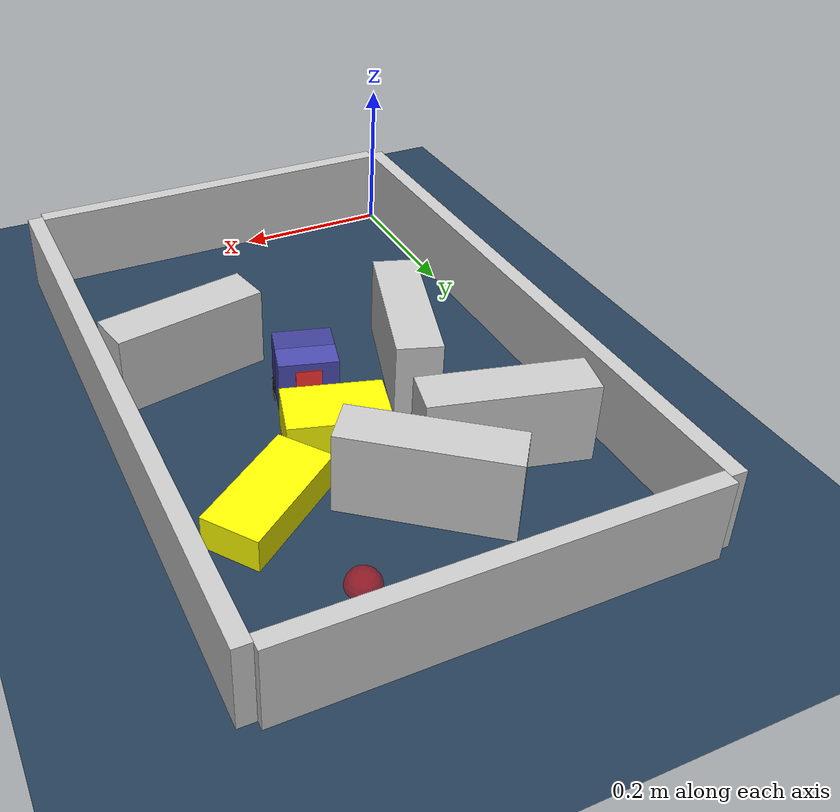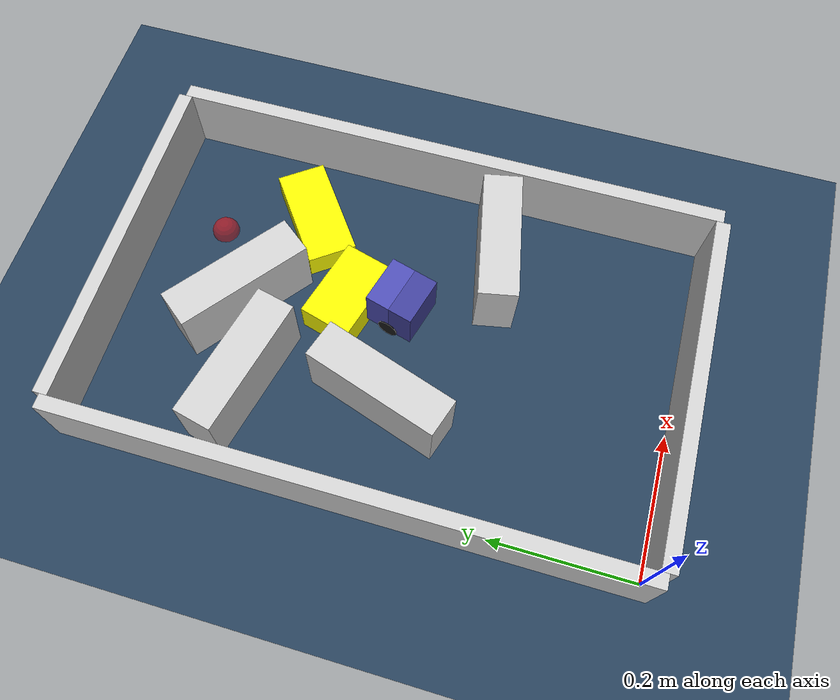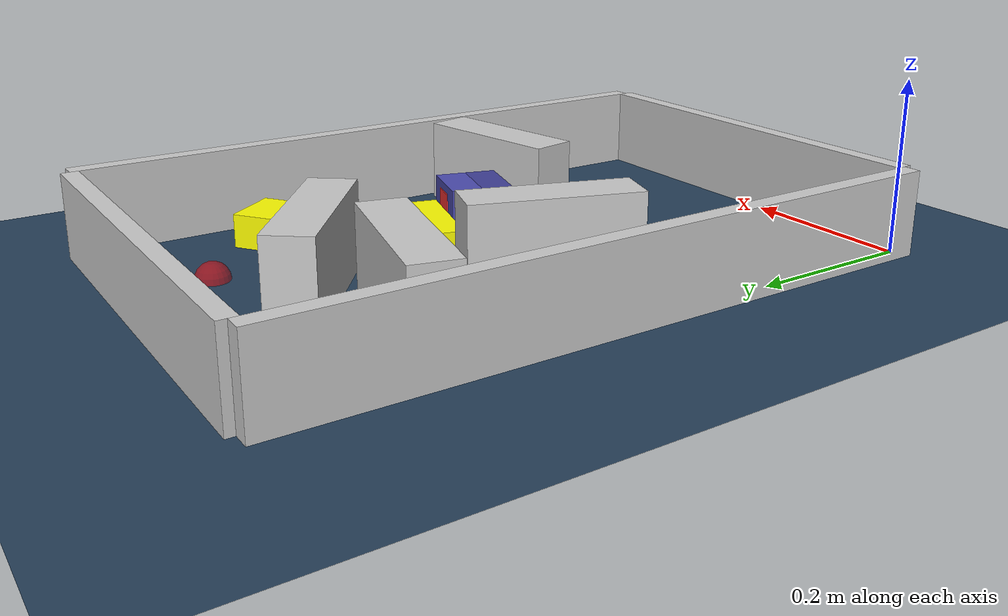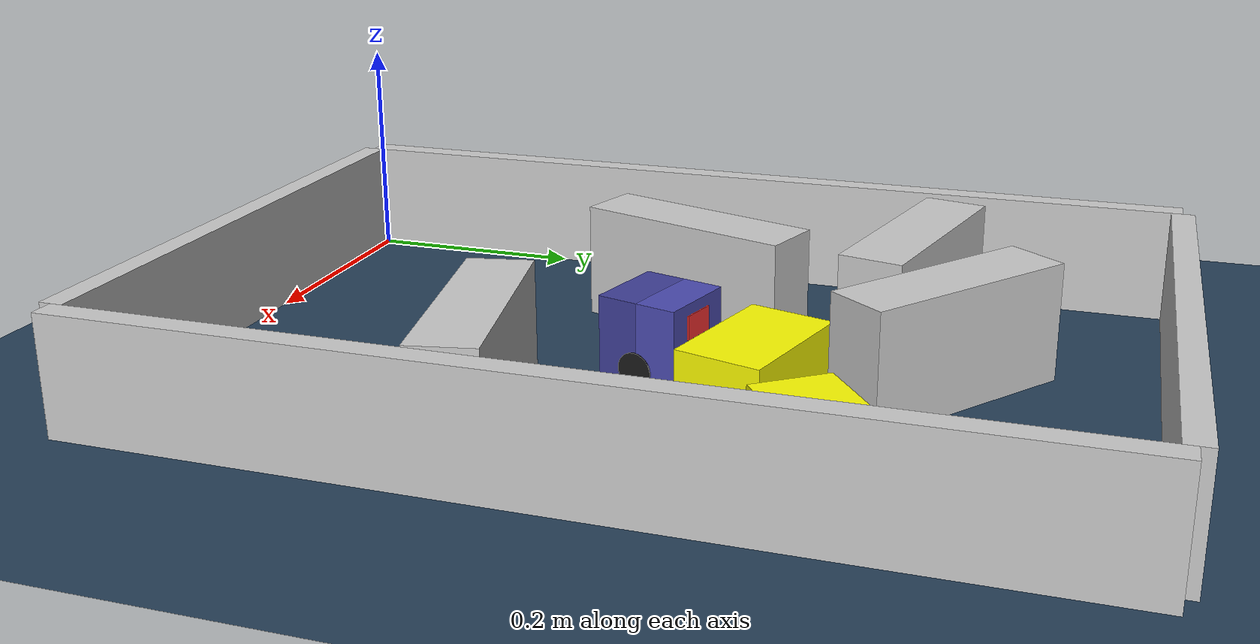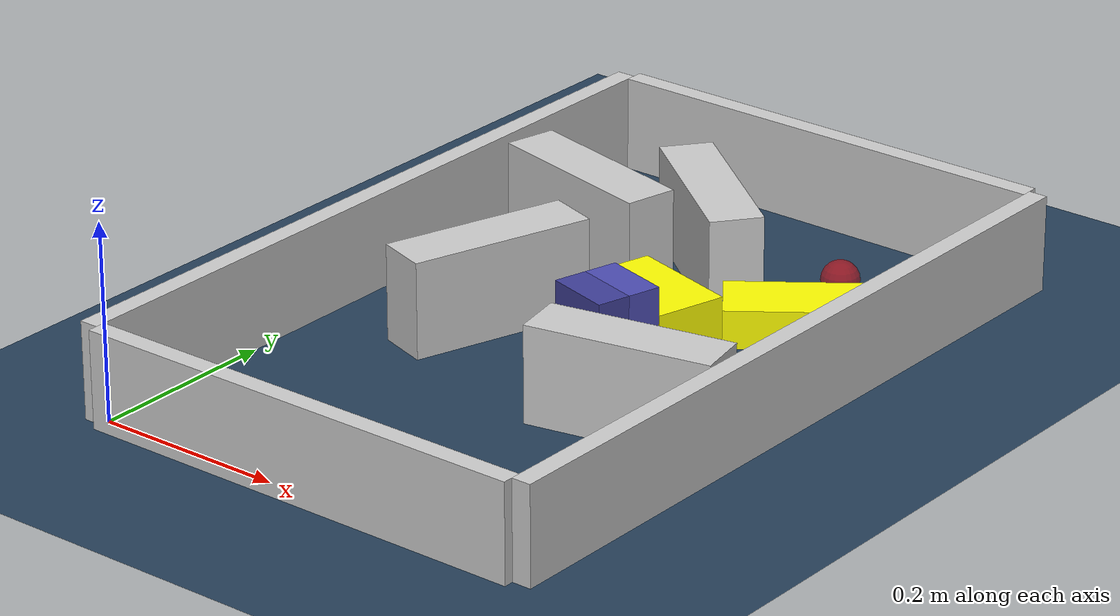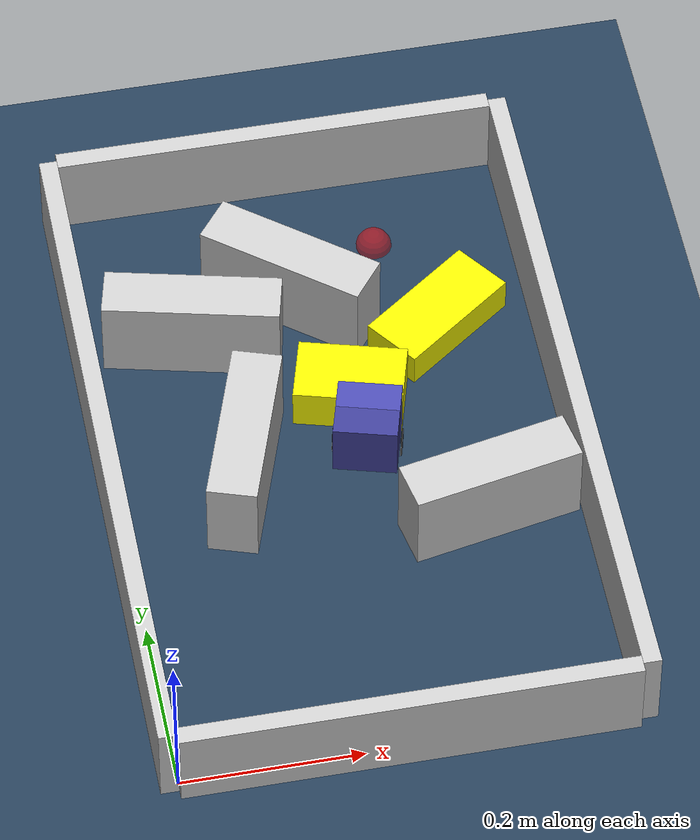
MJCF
<?xml version='1.0' encoding='utf-8'?>
<mujoco model="real_buildable">
  <compiler angle="degree" />
  <option timestep="0.002" integrator="implicitfast" iterations="100" cone="elliptic" />
  <default>
    <geom density="1" />
  </default>
  <asset>
    <texture builtin="gradient" height="3072" rgb1="0.3 0.5 0.7" rgb2="0 0 0" type="skybox" width="512" />
    <texture builtin="checker" height="300" mark="edge" markrgb="0.8 0.8 0.8" name="groundplane" rgb1="0.2 0.3 0.4" rgb2="0.1 0.2 0.3" type="2d" width="300" />
    <material name="groundplane" reflectance="0.2" texrepeat="5 5" texture="groundplane" texuniform="true" />
  </asset>
  <worldbody>
    <light dir="0 0 -1" directional="true" pos="0 0 1.5" />
    <geom name="floor" type="plane" condim="4" friction="0.5 0.005 0.001" material="groundplane" size="0 0 0.05" />
    <body name="walls">
      <geom name="wall_boundary_left" type="box" condim="4" friction="1.0 0.005 0.0001" rgba="0.8 0.8 0.8 1" pos="-0.010000 0.387500 0.050000" euler="0 0 0.000000" size="0.010000 0.397500 0.050000" />
      <geom name="wall_boundary_right" type="box" condim="4" friction="1.0 0.005 0.0001" rgba="0.8 0.8 0.8 1" pos="0.500000 0.387500 0.050000" euler="0 0 0.000000" size="0.010000 0.397500 0.050000" />
      <geom name="wall_boundary_bottom" type="box" condim="4" friction="1.0 0.005 0.0001" rgba="0.8 0.8 0.8 1" pos="0.245000 -0.010000 0.050000" euler="0 0 0.000000" size="0.245000 0.010000 0.050000" />
      <geom name="wall_boundary_top" type="box" condim="4" friction="1.0 0.005 0.0001" rgba="0.8 0.8 0.8 1" pos="0.245000 0.785000 0.050000" euler="0 0 0.000000" size="0.245000 0.010000 0.050000" />
      <geom name="wall_inner_1" type="box" condim="4" friction="1.0 0.005 0.0001" rgba="0.8 0.8 0.8 1" pos="0.389000 0.281000 0.050000" euler="0 0 11.200000" size="0.095000 0.027500 0.050000" />
      <geom name="wall_inner_2" type="box" condim="4" friction="1.0 0.005 0.0001" rgba="0.8 0.8 0.8 1" pos="0.140000 0.380000 0.050000" euler="0 0 71.700000" size="0.097500 0.027500 0.050000" />
      <geom name="wall_inner_3" type="box" condim="4" friction="1.0 0.005 0.0001" rgba="0.8 0.8 0.8 1" pos="0.115000 0.567000 0.050000" euler="0 0 166.600000" size="0.097500 0.027500 0.050000" />
      <geom name="wall_inner_4" type="box" condim="4" friction="1.0 0.005 0.0001" rgba="0.8 0.8 0.8 1" pos="0.232000 0.611000 0.050000" euler="0 0 142.000000" size="0.097500 0.027500 0.050000" />
    </body>
    <body name="car" pos="0.27661423122293016 0.39037940627565021 0.01" quat="0.7966306431132838 0 0 0.60446639149990444">
      <freejoint name="car_freejoint" />
      <inertial pos="0 0 0.0375" mass="0.35" diaginertia="0.000266 0.000266 0.000286" />
      <geom name="front_chassis_collision" type="box" pos="0.0175 0 0.0375" size="0.0175 0.035 0.0325" rgba="0.3 0.3 0.7 1" />
      <geom name="rear_chassis_collision" type="box" pos="-0.0175 0 0.0375" size="0.0175 0.035 0.0325" rgba="0.25 0.25 0.6 1" />
      <geom name="front_marker" type="box" pos="0.034 0 0.0505" size="0.002 0.015 0.01" rgba="1 0.2 0.2 1" contype="0" conaffinity="0" />
      <body name="rear_support_body" pos="-0.03 0 0.0025">
        <joint name="rear_caster_joint" type="ball" damping="0.0001" />
        <inertial pos="0 0 0" mass="0.025" diaginertia="0.000001 0.000001 0.000001" />
        <geom name="rear_support" type="sphere" pos="0 0 0" size="0.0025" friction="0 0 0" rgba="0.7 0.1 0.1 1" />
      </body>
      <body name="front_support_body" pos="0.03 0 0.0025">
        <joint name="front_caster_joint" type="ball" damping="0.0001" />
        <inertial pos="0 0 0" mass="0.025" diaginertia="0.000001 0.000001 0.000001" />
        <geom name="front_support" type="sphere" pos="0 0 0" size="0.0025" friction="0 0 0" rgba="0.1 0.7 0.1 1" />
      </body>
      <body name="left_wheel" pos="0 0.0375 0.015">
        <inertial pos="0 0 0" mass="0.05" diaginertia="0.000003 0.000006 0.000003" />
        <joint name="left_wheel_joint" type="hinge" axis="0 1 0" damping="0.01" armature="0.0001" />
        <geom name="left_wheel_collision" type="cylinder" size="0.015 0.0005" euler="90 0 0" rgba="0.1 0.1 0.1 1" />
      </body>
      <body name="right_wheel" pos="0 -0.0375 0.015">
        <inertial pos="0 0 0" mass="0.05" diaginertia="0.000003 0.000006 0.000003" />
        <joint name="right_wheel_joint" type="hinge" axis="0 1 0" damping="0.01" armature="0.0001" />
        <geom name="right_wheel_collision" type="cylinder" size="0.015 0.0005" euler="90 0 0" rgba="0.1 0.1 0.1 1" />
      </body>
    </body>
    <body name="obstacle_0_movable">
      <geom name="obstacle_0_movable" condim="4" pos="0.27228182114231775 0.46736302194285329 0.025000000000000001" friction="1 0.005 0.0001" rgba="1 1 0 1" size="0.037500 0.060000 0.025000" type="box" mass="0.1" quat="0.79695074117444686 0 0 0.60404429981707464" />
      <joint type="free" />
    </body>
    <body name="obstacle_1_movable">
      <geom name="obstacle_1_movable" condim="4" pos="0.38590674047006235 0.55164247207008443 0.02" friction="1 0.005 0.0001" rgba="1 1 0 1" size="0.035000 0.075000 0.020000" type="box" mass="0.1" quat="0.89203474594132348 0 0 -0.45196682625320916" />
      <joint type="free" />
    </body>
    <site name="goal" type="sphere" pos="0.340000 0.682000 0.0" size="0.02" rgba="1 0 0 0.5" />
  </worldbody>
  <actuator>
    <velocity name="left_wheel_drive" joint="left_wheel_joint" ctrlrange="-25 25" kv="0.75" forcerange="-0.5 0.5" />
    <velocity name="right_wheel_drive" joint="right_wheel_joint" ctrlrange="-25 25" kv="0.75" forcerange="-0.5 0.5" />
  </actuator>
</mujoco>
